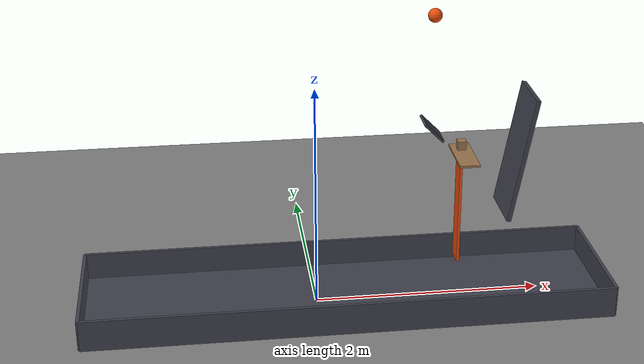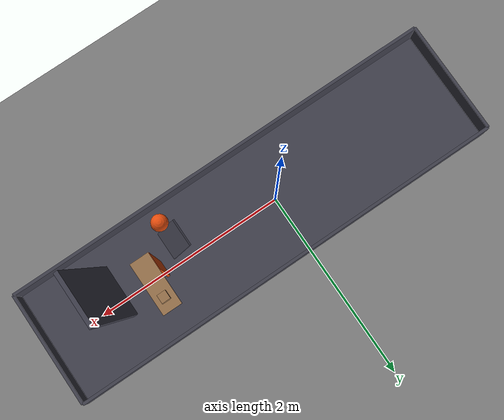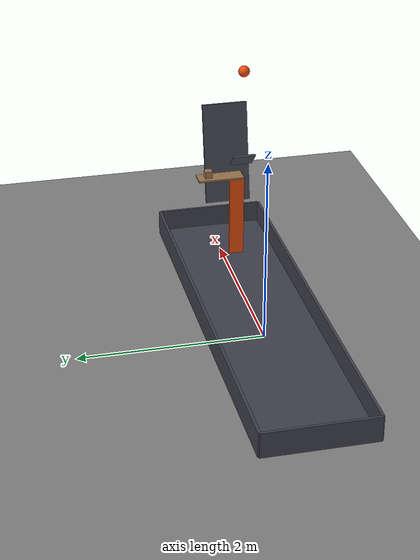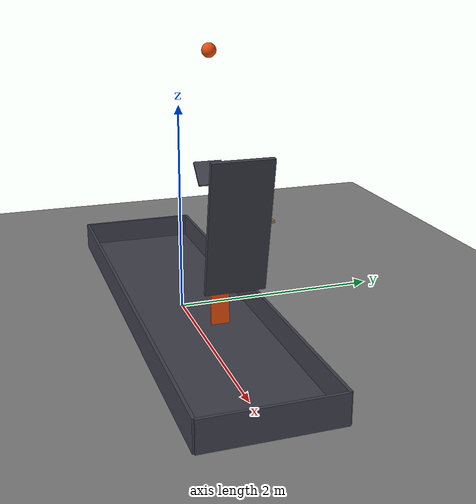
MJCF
<mujoco model="two_ricochets_and_a_gravity_release">
  <compiler angle="radian"/>
  <option timestep="0.002"/>
  <worldbody>
    <geom name="floor" type="plane" size="10 10 0.1" friction="0.9 0.01 0.005"/>
    <body name="bin">
      <geom name="bin_base" type="box" pos="0.25 0 0.02" size="2.3 0.6 0.02" friction="0.9 0.01 0.005" solref="0.01 1" rgba="0.25 0.25 0.3 1"/>
      <geom name="bin_near_wall" type="box" pos="-2.05 0 0.14" size="0.015 0.6 0.14" friction="0.9 0.01 0.005" solref="0.01 1" rgba="0.25 0.25 0.3 1"/>
      <geom name="bin_far_wall" type="box" pos="2.55 0 0.14" size="0.015 0.6 0.14" friction="0.9 0.01 0.005" solref="0.01 1" rgba="0.25 0.25 0.3 1"/>
      <geom name="bin_left_wall" type="box" pos="0.25 0.6 0.14" size="2.3 0.015 0.14" friction="0.9 0.01 0.005" solref="0.01 1" rgba="0.25 0.25 0.3 1"/>
      <geom name="bin_right_wall" type="box" pos="0.25 -0.6 0.14" size="2.3 0.015 0.14" friction="0.9 0.01 0.005" solref="0.01 1" rgba="0.25 0.25 0.3 1"/>
    </body>
    <body name="wall1">
      <geom name="wall1" type="box" pos="1 0 1.6" size="0.113137 0.12 0.01" euler="0 0.785398 0" friction="0 0.005 0.0001" solref="0.01 0.2" rgba="0.25 0.25 0.3 1"/>
    </body>
    <body name="wall2">
      <geom name="wall2" type="box" pos="1.75 0 1.35" size="0.559017 0.25 0.02" euler="0 -1.39094 0" friction="0 0.005 0.0001" solref="0.01 0.2" rgba="0.25 0.25 0.3 1"/>
    </body>
    <body name="target" pos="1.25 0 0.35">
      <joint name="release_hinge" type="hinge" pos="0 0 0" axis="0 1 0" limited="true" range="-1.5708 0" damping="0.025"/>
      <geom name="target" type="box" pos="0 0 0.45" size="0.0125 0.08 0.45" mass="0.12" friction="0.2 0.005 0.0001" solref="0.01 1" rgba="0.9 0.3 0.05 1"/>
      <geom name="release shelf" type="box" pos="0.08 0.17 0.91" size="0.09 0.25 0.01" mass="0.02" friction="0.5 0.005 0.0001" solref="0.01 1" rgba="0.6 0.45 0.3 1"/>
    </body>
    <body name="block" pos="1.33 0.3 1.31">
      <freejoint/>
      <geom name="block" type="box" pos="0 0 0" size="0.04 0.04 0.04" mass="0.08" friction="0.8 0.01 0.005" solref="0.01 1" rgba="0.6 0.45 0.3 1"/>
    </body>
    <body name="ball" pos="1 0 2.6">
      <freejoint/>
      <geom name="ball" type="sphere" pos="0 0 0" size="0.06" mass="0.25" condim="6" friction="0 0.005 0.0001" solref="0.01 0.2" rgba="0.9 0.3 0.05 1"/>
    </body>
  </worldbody>
  <keyframe>
    <key name="start" qpos="0 1.33 0.3 1.31 1 0 0 0 1 0 2.6 1 0 0 0" qvel="0 0 0 0 0 0 0 0 0 0 0 0 0"/>
  </keyframe>
</mujoco>
